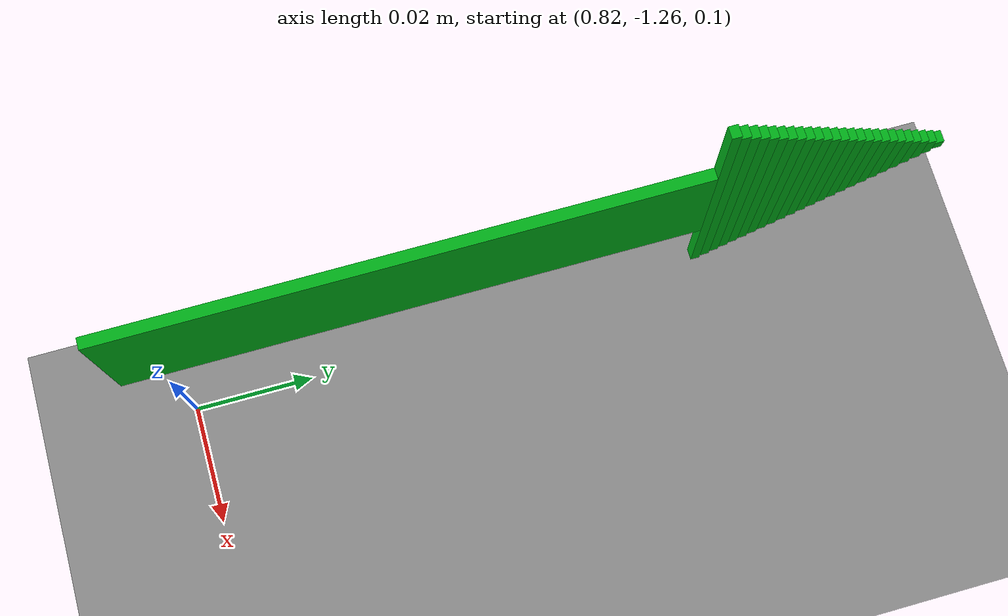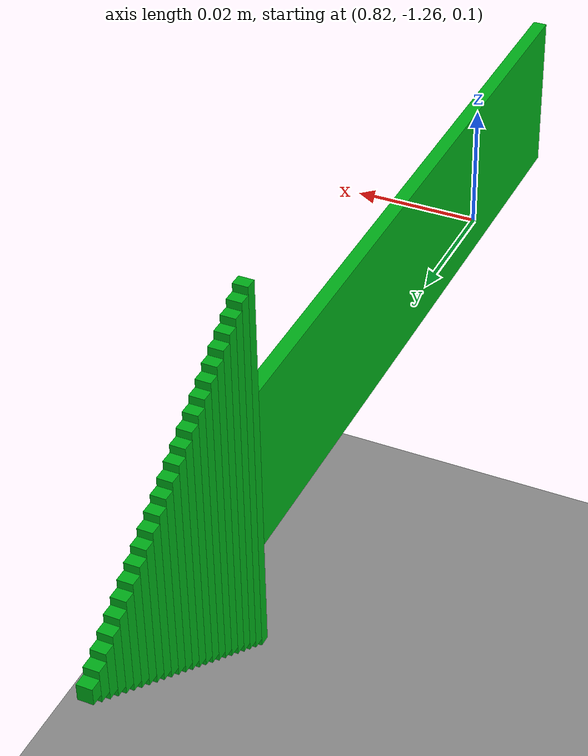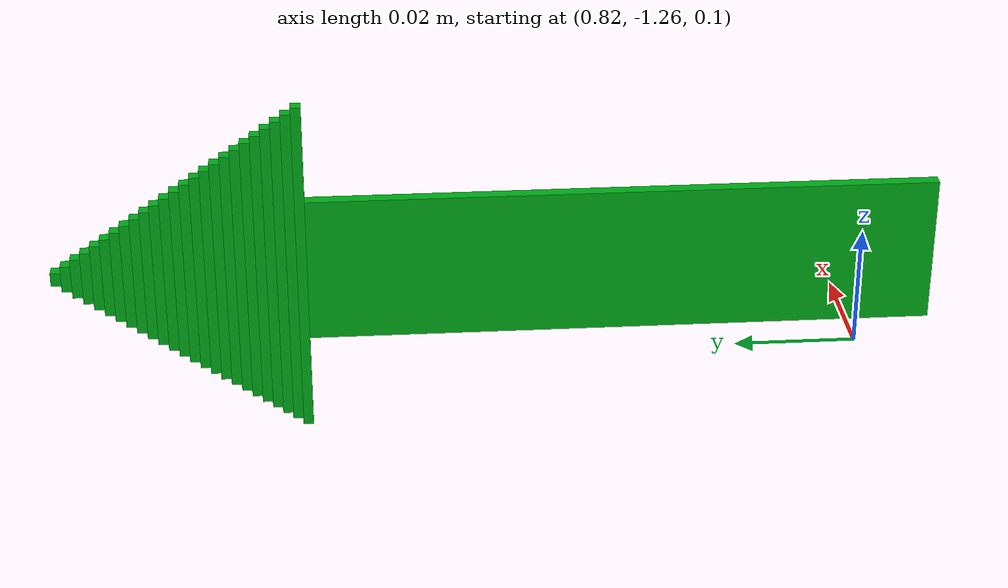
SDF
<sdf version="1.9">
 <world name="ros2_world">
  <model name="ground_plane">
   <static>true</static>
   <link name="link">
    <collision name="collision">
     <geometry><plane><normal>0 0 1</normal><size>10 10</size></plane></geometry>
    </collision>
    <visual name="visual">
     <geometry><plane><normal>0 0 1</normal><size>10 10</size></plane></geometry>
     <material><ambient>0.55 0.55 0.55 1</ambient><diffuse>0.55 0.55 0.55 1</diffuse></material>
    </visual>
   </link>
  </model>
  <model name="flechas">
   <static>true</static>
   <link name="flecha_8">
    <pose>0.814 -1.2 0.12 0 0 1.5708</pose>
    <visual name="p0">
     <pose>-0.02 0 0 0 0 0</pose>
     <geometry><box><size>0.1 0.002 0.024</size></box></geometry>
     <material><ambient>0 0.7 0.1 1</ambient><diffuse>0 0.7 0.1 1</diffuse></material>
    </visual>
    <visual name="p1">
     <pose>0.0308 0 0 0 0 0</pose>
     <geometry><box><size>0.0016 0.002 0.056</size></box></geometry>
     <material><ambient>0 0.7 0.1 1</ambient><diffuse>0 0.7 0.1 1</diffuse></material>
    </visual>
    <visual name="p2">
     <pose>0.0324 0 0 0 0 0</pose>
     <geometry><box><size>0.0016 0.002 0.05376</size></box></geometry>
     <material><ambient>0 0.7 0.1 1</ambient><diffuse>0 0.7 0.1 1</diffuse></material>
    </visual>
    <visual name="p3">
     <pose>0.034 0 0 0 0 0</pose>
     <geometry><box><size>0.0016 0.002 0.05152</size></box></geometry>
     <material><ambient>0 0.7 0.1 1</ambient><diffuse>0 0.7 0.1 1</diffuse></material>
    </visual>
    <visual name="p4">
     <pose>0.0356 0 0 0 0 0</pose>
     <geometry><box><size>0.0016 0.002 0.04928</size></box></geometry>
     <material><ambient>0 0.7 0.1 1</ambient><diffuse>0 0.7 0.1 1</diffuse></material>
    </visual>
    <visual name="p5">
     <pose>0.0372 0 0 0 0 0</pose>
     <geometry><box><size>0.0016 0.002 0.04704</size></box></geometry>
     <material><ambient>0 0.7 0.1 1</ambient><diffuse>0 0.7 0.1 1</diffuse></material>
    </visual>
    <visual name="p6">
     <pose>0.0388 0 0 0 0 0</pose>
     <geometry><box><size>0.0016 0.002 0.0448</size></box></geometry>
     <material><ambient>0 0.7 0.1 1</ambient><diffuse>0 0.7 0.1 1</diffuse></material>
    </visual>
    <visual name="p7">
     <pose>0.0404 0 0 0 0 0</pose>
     <geometry><box><size>0.0016 0.002 0.04256</size></box></geometry>
     <material><ambient>0 0.7 0.1 1</ambient><diffuse>0 0.7 0.1 1</diffuse></material>
    </visual>
    <visual name="p8">
     <pose>0.042 0 0 0 0 0</pose>
     <geometry><box><size>0.0016 0.002 0.04032</size></box></geometry>
     <material><ambient>0 0.7 0.1 1</ambient><diffuse>0 0.7 0.1 1</diffuse></material>
    </visual>
    <visual name="p9">
     <pose>0.0436 0 0 0 0 0</pose>
     <geometry><box><size>0.0016 0.002 0.03808</size></box></geometry>
     <material><ambient>0 0.7 0.1 1</ambient><diffuse>0 0.7 0.1 1</diffuse></material>
    </visual>
    <visual name="p10">
     <pose>0.0452 0 0 0 0 0</pose>
     <geometry><box><size>0.0016 0.002 0.03584</size></box></geometry>
     <material><ambient>0 0.7 0.1 1</ambient><diffuse>0 0.7 0.1 1</diffuse></material>
    </visual>
    <visual name="p11">
     <pose>0.0468 0 0 0 0 0</pose>
     <geometry><box><size>0.0016 0.002 0.0336</size></box></geometry>
     <material><ambient>0 0.7 0.1 1</ambient><diffuse>0 0.7 0.1 1</diffuse></material>
    </visual>
    <visual name="p12">
     <pose>0.0484 0 0 0 0 0</pose>
     <geometry><box><size>0.0016 0.002 0.03136</size></box></geometry>
     <material><ambient>0 0.7 0.1 1</ambient><diffuse>0 0.7 0.1 1</diffuse></material>
    </visual>
    <visual name="p13">
     <pose>0.05 0 0 0 0 0</pose>
     <geometry><box><size>0.0016 0.002 0.02912</size></box></geometry>
     <material><ambient>0 0.7 0.1 1</ambient><diffuse>0 0.7 0.1 1</diffuse></material>
    </visual>
    <visual name="p14">
     <pose>0.0516 0 0 0 0 0</pose>
     <geometry><box><size>0.0016 0.002 0.02688</size></box></geometry>
     <material><ambient>0 0.7 0.1 1</ambient><diffuse>0 0.7 0.1 1</diffuse></material>
    </visual>
    <visual name="p15">
     <pose>0.0532 0 0 0 0 0</pose>
     <geometry><box><size>0.0016 0.002 0.02464</size></box></geometry>
     <material><ambient>0 0.7 0.1 1</ambient><diffuse>0 0.7 0.1 1</diffuse></material>
    </visual>
    <visual name="p16">
     <pose>0.0548 0 0 0 0 0</pose>
     <geometry><box><size>0.0016 0.002 0.0224</size></box></geometry>
     <material><ambient>0 0.7 0.1 1</ambient><diffuse>0 0.7 0.1 1</diffuse></material>
    </visual>
    <visual name="p17">
     <pose>0.0564 0 0 0 0 0</pose>
     <geometry><box><size>0.0016 0.002 0.02016</size></box></geometry>
     <material><ambient>0 0.7 0.1 1</ambient><diffuse>0 0.7 0.1 1</diffuse></material>
    </visual>
    <visual name="p18">
     <pose>0.058 0 0 0 0 0</pose>
     <geometry><box><size>0.0016 0.002 0.01792</size></box></geometry>
     <material><ambient>0 0.7 0.1 1</ambient><diffuse>0 0.7 0.1 1</diffuse></material>
    </visual>
    <visual name="p19">
     <pose>0.0596 0 0 0 0 0</pose>
     <geometry><box><size>0.0016 0.002 0.01568</size></box></geometry>
     <material><ambient>0 0.7 0.1 1</ambient><diffuse>0 0.7 0.1 1</diffuse></material>
    </visual>
    <visual name="p20">
     <pose>0.0612 0 0 0 0 0</pose>
     <geometry><box><size>0.0016 0.002 0.01344</size></box></geometry>
     <material><ambient>0 0.7 0.1 1</ambient><diffuse>0 0.7 0.1 1</diffuse></material>
    </visual>
    <visual name="p21">
     <pose>0.0628 0 0 0 0 0</pose>
     <geometry><box><size>0.0016 0.002 0.0112</size></box></geometry>
     <material><ambient>0 0.7 0.1 1</ambient><diffuse>0 0.7 0.1 1</diffuse></material>
    </visual>
    <visual name="p22">
     <pose>0.0644 0 0 0 0 0</pose>
     <geometry><box><size>0.0016 0.002 0.00896</size></box></geometry>
     <material><ambient>0 0.7 0.1 1</ambient><diffuse>0 0.7 0.1 1</diffuse></material>
    </visual>
    <visual name="p23">
     <pose>0.066 0 0 0 0 0</pose>
     <geometry><box><size>0.0016 0.002 0.00672</size></box></geometry>
     <material><ambient>0 0.7 0.1 1</ambient><diffuse>0 0.7 0.1 1</diffuse></material>
    </visual>
    <visual name="p24">
     <pose>0.0676 0 0 0 0 0</pose>
     <geometry><box><size>0.0016 0.002 0.00448</size></box></geometry>
     <material><ambient>0 0.7 0.1 1</ambient><diffuse>0 0.7 0.1 1</diffuse></material>
    </visual>
    <visual name="p25">
     <pose>0.0692 0 0 0 0 0</pose>
     <geometry><box><size>0.0016 0.002 0.00224</size></box></geometry>
     <material><ambient>0 0.7 0.1 1</ambient><diffuse>0 0.7 0.1 1</diffuse></material>
    </visual>
   </link>
  </model>
 </world>
</sdf>
